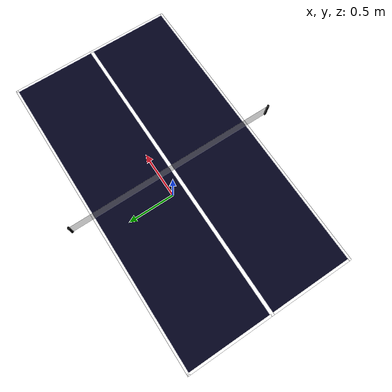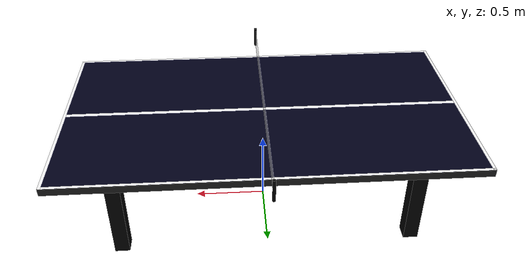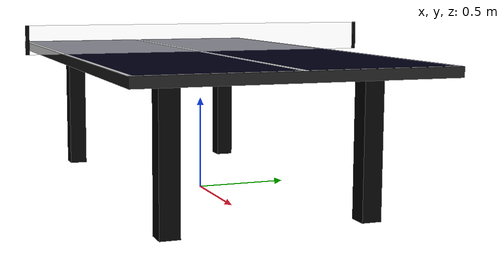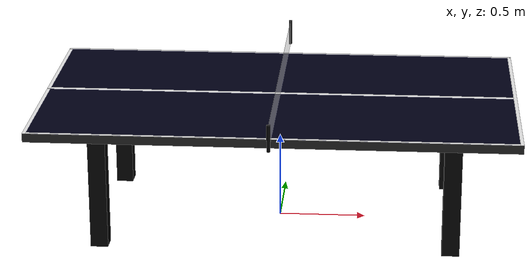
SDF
<?xml version="1.0" ?>
<sdf version="1.5">
  <model name="tt_table">
    <static>true</static>
    <link name="leg1">
      <collision name="collision">
        <pose>1 0.5 0.375 0 0 0</pose>
        <geometry>
            <box>
                <size> 0.1 0.1 0.75  </size>
            </box>
        </geometry>
        <surface>
          <friction>
            <ode>
              <mu>1.0</mu>
              <mu2>1.0</mu2>
            </ode>
          </friction>
          <contact>
            <ode>
              <kp>10000000.0</kp>
              <kd>1.0</kd>
              <min_depth>0.001</min_depth>
              <max_vel>0.1</max_vel>
            </ode>
          </contact>
        </surface>
      </collision>
      <visual name="visual">
        <pose>1 0.5 0.375 0 0 0</pose>
        <geometry>
            <box>
                <size> 0.1 0.1 0.75  </size>
            </box>
        </geometry>
        <material>
            <ambient> 0 0 0 1 </ambient>
            <specular> 0.1 0.1 0.1 1 </specular>
            <diffuse> 0 0 0 1 </diffuse>
            <emissive> 0.1 0.1 0.1 1 </emissive>
        </material>
      </visual>
    </link>
    <link name="leg2">
      <collision name="collision">
        <pose>-1 0.5 0.375 0 0 0</pose>
        <geometry>
            <box>
                <size> 0.1 0.1 0.75  </size>
            </box>
        </geometry>
        <surface>
          <friction>
            <ode>
              <mu>1.0</mu>
              <mu2>1.0</mu2>
            </ode>
          </friction>
          <contact>
            <ode>
              <kp>10000000.0</kp>
              <kd>1.0</kd>
              <min_depth>0.001</min_depth>
              <max_vel>0.1</max_vel>
            </ode>
          </contact>
        </surface>
      </collision>
      <visual name="visual">
        <pose>-1 0.5 0.375 0 0 0</pose>
        <geometry>
            <box>
                <size> 0.1 0.1 0.75  </size>
            </box>
        </geometry>
        <material>
            <ambient> 0 0 0 1 </ambient>
            <specular> 0.1 0.1 0.1 1 </specular>
            <diffuse> 0 0 0 1 </diffuse>
            <emissive> 0.1 0.1 0.1 1 </emissive>
        </material>
      </visual>
    </link>
    <link name="leg3">
      <collision name="collision">
        <pose>1 -0.5 0.375 0 0 0</pose>
        <geometry>
            <box>
                <size> 0.1 0.1 0.75  </size>
            </box>
        </geometry>
        <surface>
          <friction>
            <ode>
              <mu>1.0</mu>
              <mu2>1.0</mu2>
            </ode>
          </friction>
          <contact>
            <ode>
              <kp>10000000.0</kp>
              <kd>1.0</kd>
              <min_depth>0.001</min_depth>
              <max_vel>0.1</max_vel>
            </ode>
          </contact>
        </surface>
      </collision>
      <visual name="visual">
        <pose>1 -0.5 0.375 0 0 0</pose>
        <geometry>
            <box>
                <size> 0.1 0.1 0.75  </size>
            </box>
        </geometry>
        <material>
            <ambient> 0 0 0 1 </ambient>
            <specular> 0.1 0.1 0.1 1 </specular>
            <diffuse> 0 0 0 1 </diffuse>
            <emissive> 0.1 0.1 0.1 1 </emissive>
        </material>
      </visual>
    </link>
    <link name="leg4">
      <collision name="collision">
        <pose>-1 -0.5 0.375 0 0 0</pose>
        <geometry>
            <box>
                <size> 0.1 0.1 0.75  </size>
            </box>
        </geometry>
        <surface>
          <friction>
            <ode>
              <mu>1.0</mu>
              <mu2>1.0</mu2>
            </ode>
          </friction>
          <contact>
            <ode>
              <kp>10000000.0</kp>
              <kd>1.0</kd>
              <min_depth>0.001</min_depth>
              <max_vel>0.1</max_vel>
            </ode>
          </contact>
        </surface>
      </collision>
      <visual name="visual">
        <pose>-1 -0.5 0.375 0 0 0</pose>
        <geometry>
            <box>
                <size> 0.1 0.1 0.75  </size>
            </box>
        </geometry>
        <material>
            <ambient> 0 0 0 1 </ambient>
            <specular> 0.1 0.1 0.1 1 </specular>
            <diffuse> 0 0 0 1 </diffuse>
            <emissive> 0.1 0.1 0.1 1 </emissive>
        </material>
      </visual>
    </link>
    <link name="table_surface">
      <collision name="collision">
        <pose>0 0 0.7605 0 0 0</pose>
        <geometry>
            <plane>
                <size> 2.74 1.525 0  </size>
            </plane>
        </geometry>
        <surface>
          <friction>
            <ode>
              <mu>1.0</mu>
              <mu2>1.0</mu2>
            </ode>
          </friction>
          <contact>
            <ode>
              <kp>10000000.0</kp>
              <kd>1.0</kd>
              <min_depth>0.001</min_depth>
              <max_vel>0.1</max_vel>
            </ode>
          </contact>
        </surface>
      </collision>
      <visual name="visual">
        <pose>0 0 0.7605 0 0 0</pose>
        <geometry>
            <plane>
                <size> 2.74 1.525 0  </size>
            </plane>
        </geometry>
        <material>
            <ambient> 0 0 0.2 1 </ambient>
            <specular> 0.1 0.1 0.1 1 </specular>
            <diffuse> 0 0 0.1 1 </diffuse>
            <emissive> 0.1 0.1 0.1 1 </emissive>
        </material>
      </visual>
    </link>
    <link name="net">
      <collision name="collision">
        <pose>0 0 0.83675 0 0 0</pose>
        <geometry>
            <box>
                <size> 0.001 1.875 0.1525  </size>
            </box>
        </geometry>
        <surface>
          <friction>
            <ode>
              <mu>1.0</mu>
              <mu2>1.0</mu2>
            </ode>
          </friction>
          <contact>
            <ode>
              <kp>10000000.0</kp>
              <kd>1.0</kd>
              <min_depth>0.001</min_depth>
              <max_vel>0.1</max_vel>
            </ode>
          </contact>
        </surface>
      </collision>
      <visual name="visual">
        <pose>0 0 0.83675 0 0 0</pose>
        <geometry>
            <box>
                <size> 0.001 1.875 0.1525  </size>
            </box>
        </geometry>
        <material>
            <ambient> 1 1 1 0.5 </ambient>
            <specular> 0.1 0.1 0.1 0.5 </specular>
            <diffuse> 1 1 1 0.5 </diffuse>
            <emissive> 0.1 0.1 0.1 0.5 </emissive>
        </material>
      </visual>
    </link>
    <link name="net_holder1">
      <collision name="collision">
        <pose>0 -0.9475 0.83675 0 0 0</pose>
        <geometry>
            <cylinder>
                <radius> 0.01 </radius>
                <length> 0.1525  </length>
            </cylinder>
        </geometry>
        <surface>
          <friction>
            <ode>
              <mu>1.0</mu>
              <mu2>1.0</mu2>
            </ode>
          </friction>
          <contact>
            <ode>
              <kp>10000000.0</kp>
              <kd>1.0</kd>
              <min_depth>0.001</min_depth>
              <max_vel>0.1</max_vel>
            </ode>
          </contact>
        </surface>
      </collision>
      <visual name="visual">
        <pose>0 -0.9475 0.83675 0 0 0</pose>
        <geometry>
            <cylinder>
                <radius> 0.01 </radius>
                <length> 0.1525  </length>
            </cylinder>
        </geometry>
        <material>
            <ambient> 0 0 0 1 </ambient>
            <specular> 0.1 0.1 0.1 1 </specular>
            <diffuse> 0 0 0 1 </diffuse>
            <emissive> 0.1 0.1 0.1 1 </emissive>
        </material>
      </visual>
    </link>
    <link name="net_holder2">
      <collision name="collision">
        <pose>0 0.9475 0.83675 0 0 0</pose>
        <geometry>
            <cylinder>
                <radius> 0.01 </radius>
                <length> 0.1525  </length>
            </cylinder>
        </geometry>
        <surface>
          <friction>
            <ode>
              <mu>1.0</mu>
              <mu2>1.0</mu2>
            </ode>
          </friction>
          <contact>
            <ode>
              <kp>10000000.0</kp>
              <kd>1.0</kd>
              <min_depth>0.001</min_depth>
              <max_vel>0.1</max_vel>
            </ode>
          </contact>
        </surface>
      </collision>
      <visual name="visual">
        <pose>0 0.9475 0.83675 0 0 0</pose>
        <geometry>
            <cylinder>
                <radius> 0.01 </radius>
                <length> 0.1525  </length>
            </cylinder>
        </geometry>
        <material>
            <ambient> 0 0 0 1 </ambient>
            <specular> 0.1 0.1 0.1 1 </specular>
            <diffuse> 0 0 0 1 </diffuse>
            <emissive> 0.1 0.1 0.1 1 </emissive>
        </material>
      </visual>
    </link>
    <link name="centerline">
      <collision name="collision">
        <pose>0 0 0.761 0 0 0</pose>
        <geometry>
            <plane>
                <size> 2.74 0.03 0  </size>
            </plane>
        </geometry>
        <surface>
          <friction>
            <ode>
              <mu>1.0</mu>
              <mu2>1.0</mu2>
            </ode>
          </friction>
          <contact>
            <ode>
              <kp>10000000.0</kp>
              <kd>1.0</kd>
              <min_depth>0.001</min_depth>
              <max_vel>0.1</max_vel>
            </ode>
          </contact>
        </surface>
      </collision>
      <visual name="visual">
        <pose>0 0 0.761 0 0 0</pose>
        <geometry>
            <plane>
                <size> 2.74 0.03 0  </size>
            </plane>
        </geometry>
        <material>
            <ambient> 1 1 1 1 </ambient>
            <specular> 0.1 0.1 0.1 1 </specular>
            <diffuse> 1 1 1 1 </diffuse>
            <emissive> 0.1 0.1 0.1 1 </emissive>
        </material>
      </visual>
    </link>
    <link name="sideline1">
      <collision name="collision">
        <pose>0 0.7525 0.761 0 0 0</pose>
        <geometry>
            <plane>
                <size> 2.74 0.02 0  </size>
            </plane>
        </geometry>
        <surface>
          <friction>
            <ode>
              <mu>1.0</mu>
              <mu2>1.0</mu2>
            </ode>
          </friction>
          <contact>
            <ode>
              <kp>10000000.0</kp>
              <kd>1.0</kd>
              <min_depth>0.001</min_depth>
              <max_vel>0.1</max_vel>
            </ode>
          </contact>
        </surface>
      </collision>
      <visual name="visual">
        <pose>0 0.7525 0.761 0 0 0</pose>
        <geometry>
            <plane>
                <size> 2.74 0.02 0  </size>
            </plane>
        </geometry>
        <material>
            <ambient> 1 1 1 1 </ambient>
            <specular> 0.1 0.1 0.1 1 </specular>
            <diffuse> 1 1 1 1 </diffuse>
            <emissive> 0.1 0.1 0.1 1 </emissive>
        </material>
      </visual>
    </link>
    <link name="sideline2">
      <collision name="collision">
        <pose>0 -0.7525 0.761 0 0 0</pose>
        <geometry>
            <plane>
                <size> 2.74 0.02 0  </size>
            </plane>
        </geometry>
        <surface>
          <friction>
            <ode>
              <mu>1.0</mu>
              <mu2>1.0</mu2>
            </ode>
          </friction>
          <contact>
            <ode>
              <kp>10000000.0</kp>
              <kd>1.0</kd>
              <min_depth>0.001</min_depth>
              <max_vel>0.1</max_vel>
            </ode>
          </contact>
        </surface>
      </collision>
      <visual name="visual">
        <pose>0 -0.7525 0.761 0 0 0</pose>
        <geometry>
            <plane>
                <size> 2.74 0.02 0  </size>
            </plane>
        </geometry>
        <material>
            <ambient> 1 1 1 1 </ambient>
            <specular> 0.1 0.1 0.1 1 </specular>
            <diffuse> 1 1 1 1 </diffuse>
            <emissive> 0.1 0.1 0.1 1 </emissive>
        </material>
      </visual>
    </link>
    <link name="sideline3">
      <collision name="collision">
        <pose>1.36 0 0.761 0 0 1.57079632679</pose>
        <geometry>
            <plane>
                <size> 1.525 0.02 0  </size>
            </plane>
        </geometry>
        <surface>
          <friction>
            <ode>
              <mu>1.0</mu>
              <mu2>1.0</mu2>
            </ode>
          </friction>
          <contact>
            <ode>
              <kp>10000000.0</kp>
              <kd>1.0</kd>
              <min_depth>0.001</min_depth>
              <max_vel>0.1</max_vel>
            </ode>
          </contact>
        </surface>
      </collision>
      <visual name="visual">
        <pose>1.36 0 0.761 0 0 1.57079632679</pose>
        <geometry>
            <plane>
                <size> 1.525 0.02 0  </size>
            </plane>
        </geometry>
        <material>
            <ambient> 1 1 1 1 </ambient>
            <specular> 0.1 0.1 0.1 1 </specular>
            <diffuse> 1 1 1 1 </diffuse>
            <emissive> 0.1 0.1 0.1 1 </emissive>
        </material>
      </visual>
    </link>
    <link name="sideline4">
      <collision name="collision">
        <pose>-1.36 0 0.761 0 0 1.57079632679</pose>
        <geometry>
            <plane>
                <size> 1.525 0.02 0  </size>
            </plane>
        </geometry>
        <surface>
          <friction>
            <ode>
              <mu>1.0</mu>
              <mu2>1.0</mu2>
            </ode>
          </friction>
          <contact>
            <ode>
              <kp>10000000.0</kp>
              <kd>1.0</kd>
              <min_depth>0.001</min_depth>
              <max_vel>0.1</max_vel>
            </ode>
          </contact>
        </surface>
      </collision>
      <visual name="visual">
        <pose>-1.36 0 0.761 0 0 1.57079632679</pose>
        <geometry>
            <plane>
                <size> 1.525 0.02 0  </size>
            </plane>
        </geometry>
        <material>
            <ambient> 1 1 1 1 </ambient>
            <specular> 0.1 0.1 0.1 1 </specular>
            <diffuse> 1 1 1 1 </diffuse>
            <emissive> 0.1 0.1 0.1 1 </emissive>
        </material>
      </visual>
    </link>
    <link name="table">
      <collision name="collision">
        <pose>0 0 0.735 0 0 0</pose>
        <geometry>
            <box>
                <size> 2.74 1.525 0.05  </size>
            </box>
        </geometry>
        <surface>
          <friction>
            <ode>
              <mu>1.0</mu>
              <mu2>1.0</mu2>
            </ode>
          </friction>
          <contact>
            <ode>
              <kp>10000000.0</kp>
              <kd>1.0</kd>
              <min_depth>0.001</min_depth>
              <max_vel>0.1</max_vel>
            </ode>
          </contact>
        </surface>
      </collision>
      <visual name="visual">
        <pose>0 0 0.735 0 0 0</pose>
        <geometry>
            <box>
                <size> 2.74 1.525 0.05  </size>
            </box>
        </geometry>
        <material>
            <ambient> 0 0 0 1 </ambient>
            <specular> 0.1 0.1 0.1 1 </specular>
            <diffuse> 0.1 0.1 0.1 1 </diffuse>
            <emissive> 0.1 0.1 0.1 1 </emissive>
        </material>
      </visual>
    </link>
  </model>
</sdf>
